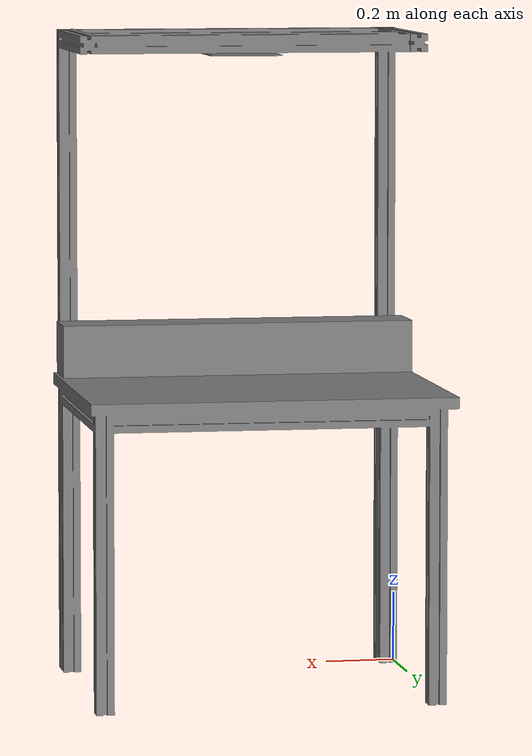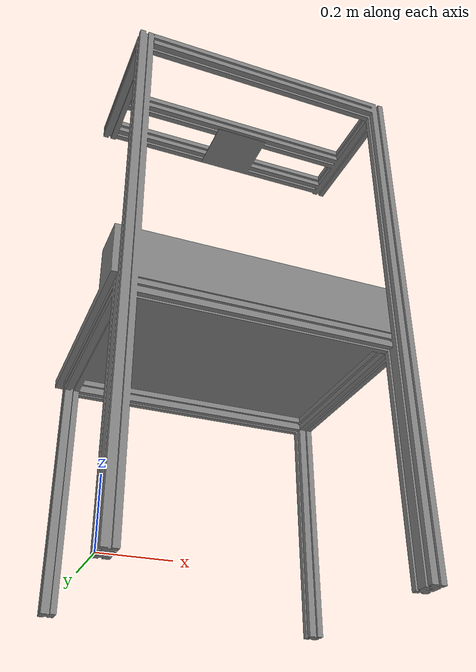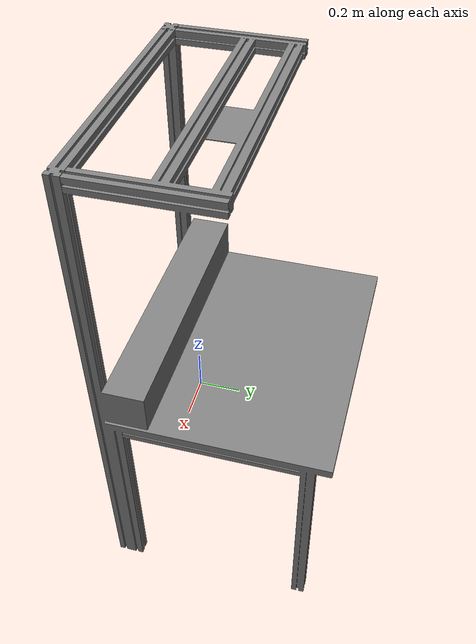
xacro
<?xml version="1.0" ?>
<robot name="desk" xmlns:xacro="http://www.ros.org/wiki/xacro">

  <link name="desk">
    <static>true</static>
    <!-- Inertial -->
    <inertial>
      <origin xyz="0.5 0.4 0.435" rpy="0 0 0" />
      <mass value="100000" />
      <inertia ixx="1000000" ixy="0" ixz="0" iyy="1000000" iyz="0" izz="1000000" />
    </inertial>

    <!-- Base collision -->
    <collision name="desk_base">
      <origin xyz="0.5 0.4 0.435" rpy="0 0 0" />
      <geometry>
        <box size="1 0.8 0.87" />
      </geometry>
    </collision>

    <!-- Box collision -->
    <collision name="desk_box">
      <origin xyz="0.5 0.08 0.95" rpy="0 0 0" />
      <geometry>
        <box size="1 0.15 0.15" />
      </geometry>
    </collision>

    <!-- Back collision -->
    <collision name="desk_back">
      <origin xyz="0.5 -0.02 1.35" rpy="1.57 0 0" />
      <geometry>
        <box size="1 1.0 0.04" />
      </geometry>
    </collision>

    <!-- Visual -->
    <visual name="visual">
      <origin xyz="0 0 0" rpy="0 0 0" />
      <geometry>
        <mesh filename="file://$(find ros2_ur5_interface)/models/meshes/desk.stl" scale="0.001 0.001 0.001" />
      </geometry>
      <material name="grey_material">
        <color rgba="0.5 0.5 0.5 1.0"/> <!-- Grey color, fully opaque -->
      </material>
    </visual>
  </link>
</robot>
